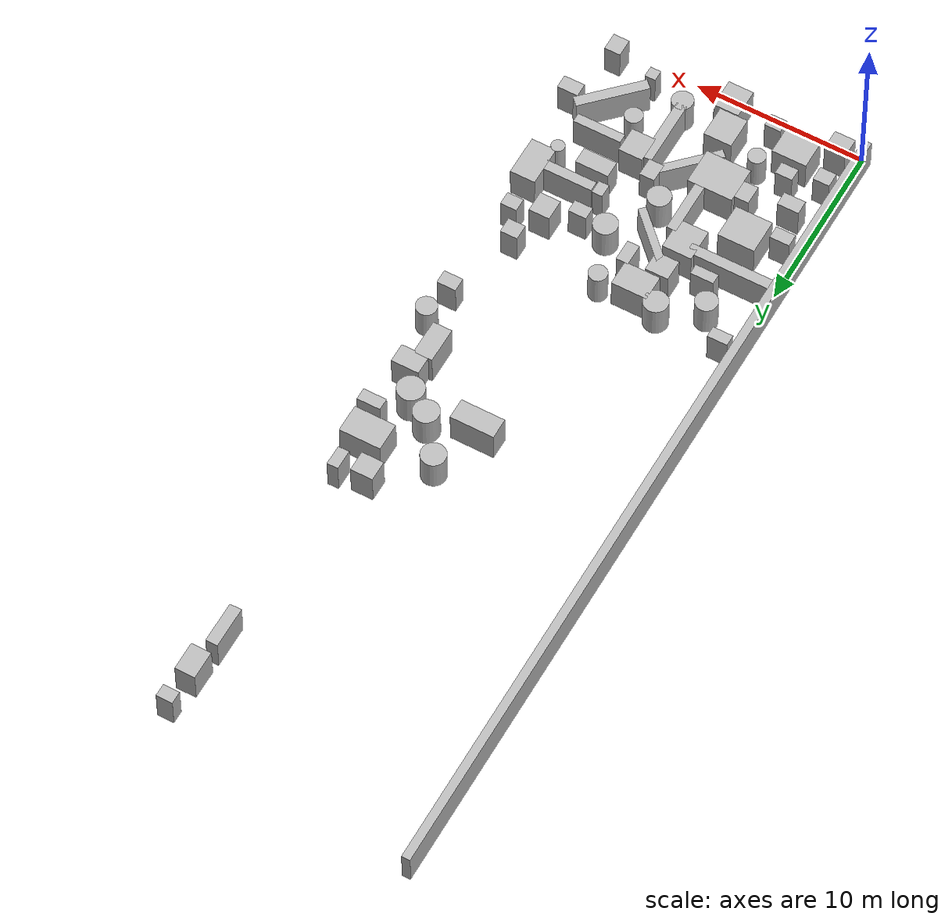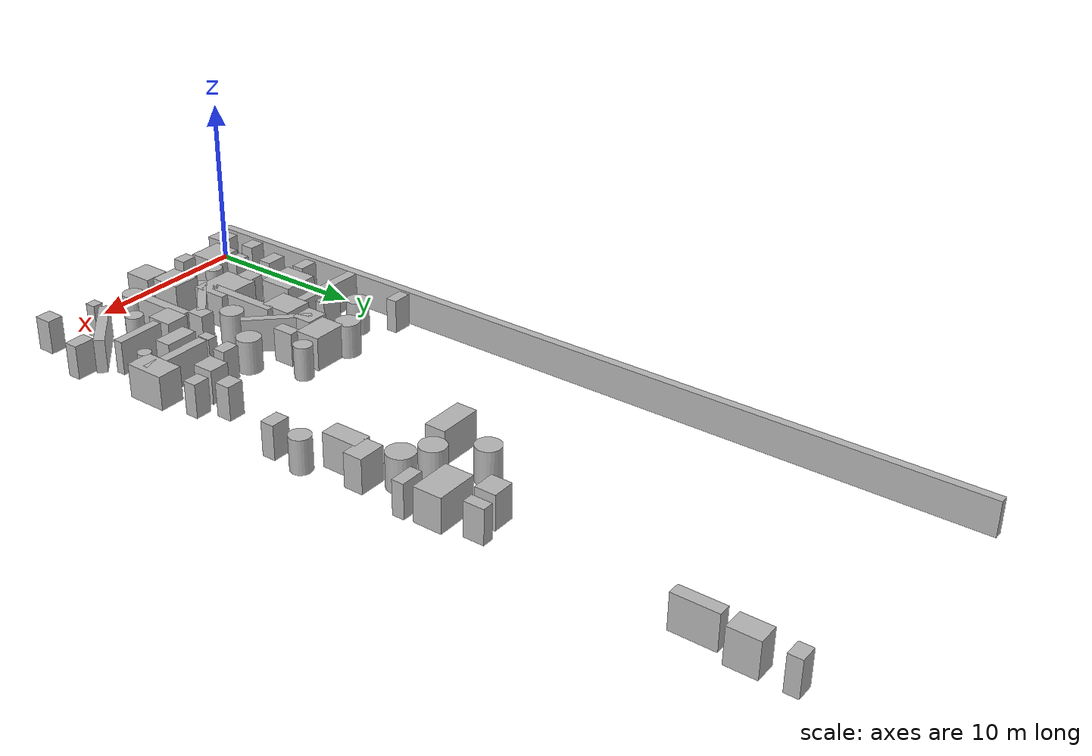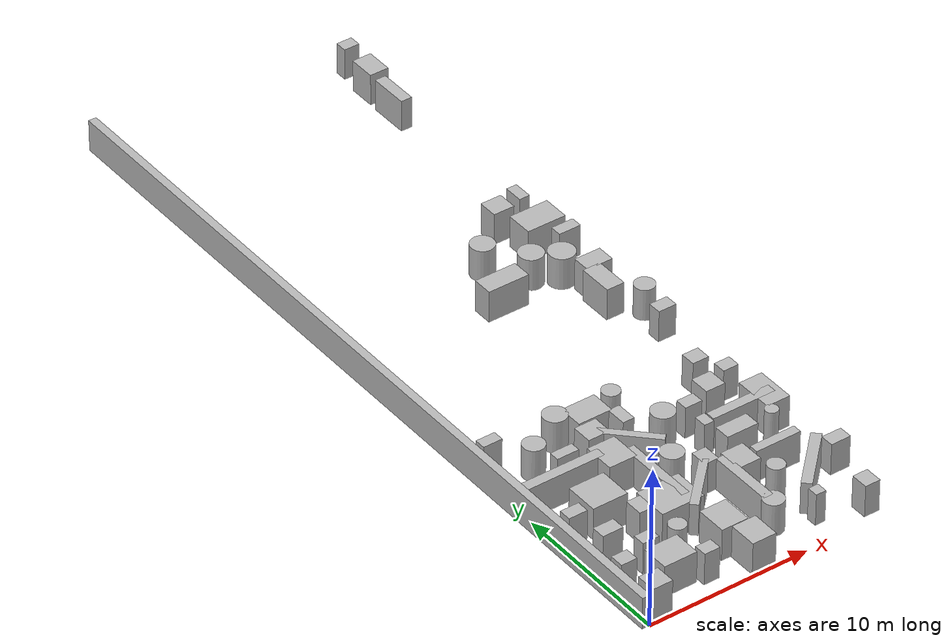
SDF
<sdf version="1.7">
 <world name="01_sparse">
  <include><uri>model://sun</uri></include>
  <model name="outer_wall_left">
   <static>true</static>
   <pose>-0.250000 25.000000 1.000000 0 0 0</pose>
   <link name="link">
    <collision name="collision">
     <geometry><box><size>0.500000 50.000000 2.000000</size></box></geometry>
    </collision>
    <visual name="visual"><geometry><box><size>0.500000 50.000000 2.000000</size></box></geometry></visual>
   </link>
  </model>
  <model name="obstacle_0000">
   <static>true</static>
   <pose>0.695004 3.118231 1.000000 0 0 0.000000</pose>
   <link name="link">
    <collision name="collision">
     <geometry><box><size>0.973815 0.859350 2.000000</size></box></geometry>
    </collision>
    <visual name="visual"><geometry><box><size>0.973815 0.859350 2.000000</size></box></geometry></visual>
   </link>
  </model>
  <model name="obstacle_0001">
   <static>true</static>
   <pose>0.967370 0.865894 1.000000 0 0 1.570796</pose>
   <link name="link">
    <collision name="collision">
     <geometry><box><size>1.232415 1.233601 2.000000</size></box></geometry>
    </collision>
    <visual name="visual"><geometry><box><size>1.232415 1.233601 2.000000</size></box></geometry></visual>
   </link>
  </model>
  <model name="obstacle_0002">
   <static>true</static>
   <pose>1.453639 5.475115 1.000000 0 0 1.570796</pose>
   <link name="link">
    <collision name="collision">
     <geometry><box><size>0.838642 1.276874 2.000000</size></box></geometry>
    </collision>
    <visual name="visual"><geometry><box><size>0.838642 1.276874 2.000000</size></box></geometry></visual>
   </link>
  </model>
  <model name="obstacle_0003">
   <static>true</static>
   <pose>9.568257 4.710781 1.000000 0 0 1.570796</pose>
   <link name="link">
    <collision name="collision">
     <geometry><box><size>3.980438 0.613456 2.000000</size></box></geometry>
    </collision>
    <visual name="visual"><geometry><box><size>3.980438 0.613456 2.000000</size></box></geometry></visual>
   </link>
  </model>
  <model name="obstacle_0005">
   <static>true</static>
   <pose>4.604910 1.313257 1.000000 0 0 1.570796</pose>
   <link name="link">
    <collision name="collision">
     <geometry><box><size>0.781066 0.968072 2.000000</size></box></geometry>
    </collision>
    <visual name="visual"><geometry><box><size>0.781066 0.968072 2.000000</size></box></geometry></visual>
   </link>
  </model>
  <model name="obstacle_0006">
   <static>true</static>
   <pose>10.434392 6.153786 1.000000 0 0 0.000000</pose>
   <link name="link">
    <collision name="collision">
     <geometry><box><size>1.417977 1.537242 2.000000</size></box></geometry>
    </collision>
    <visual name="visual"><geometry><box><size>1.417977 1.537242 2.000000</size></box></geometry></visual>
   </link>
  </model>
  <model name="obstacle_0007">
   <static>true</static>
   <pose>2.624320 3.797344 1.000000 0 0 1.570796</pose>
   <link name="link">
    <collision name="collision">
     <geometry><box><size>0.756318 1.016406 2.000000</size></box></geometry>
    </collision>
    <visual name="visual"><geometry><box><size>0.756318 1.016406 2.000000</size></box></geometry></visual>
   </link>
  </model>
  <model name="obstacle_0008">
   <static>true</static>
   <pose>2.915276 2.166675 1.000000 0 0 1.570796</pose>
   <link name="link">
    <collision name="collision">
     <geometry><box><size>1.693183 2.049549 2.000000</size></box></geometry>
    </collision>
    <visual name="visual"><geometry><box><size>1.693183 2.049549 2.000000</size></box></geometry></visual>
   </link>
  </model>
  <model name="obstacle_0009">
   <static>true</static>
   <pose>11.501794 4.571215 1.000000 0 0 0</pose>
   <link name="link">
    <collision name="collision">
     <geometry><cylinder><radius>0.522550</radius><length>2.000000</length></cylinder></geometry>
    </collision>
    <visual name="visual">
     <geometry><cylinder><radius>0.522550</radius><length>2.000000</length></cylinder></geometry>
    </visual>
   </link>
  </model>
  <model name="obstacle_0010">
   <static>true</static>
   <pose>7.431690 5.729944 1.000000 0 0 0.785398</pose>
   <link name="link">
    <collision name="collision">
     <geometry><box><size>3.777457 0.501467 2.000000</size></box></geometry>
    </collision>
    <visual name="visual"><geometry><box><size>3.777457 0.501467 2.000000</size></box></geometry></visual>
   </link>
  </model>
  <model name="obstacle_0012">
   <static>true</static>
   <pose>0.858085 7.583045 1.000000 0 0 0.000000</pose>
   <link name="link">
    <collision name="collision">
     <geometry><box><size>1.160673 0.759524 2.000000</size></box></geometry>
    </collision>
    <visual name="visual"><geometry><box><size>1.160673 0.759524 2.000000</size></box></geometry></visual>
   </link>
  </model>
  <model name="obstacle_0013">
   <static>true</static>
   <pose>6.826381 2.863446 1.000000 0 0 0.000000</pose>
   <link name="link">
    <collision name="collision">
     <geometry><box><size>1.664469 1.877489 2.000000</size></box></geometry>
    </collision>
    <visual name="visual"><geometry><box><size>1.664469 1.877489 2.000000</size></box></geometry></visual>
   </link>
  </model>
  <model name="obstacle_0016">
   <static>true</static>
   <pose>11.797795 8.230290 1.000000 0 0 0.000000</pose>
   <link name="link">
    <collision name="collision">
     <geometry><box><size>1.982779 1.002163 2.000000</size></box></geometry>
    </collision>
    <visual name="visual"><geometry><box><size>1.982779 1.002163 2.000000</size></box></geometry></visual>
   </link>
  </model>
  <model name="obstacle_0017">
   <static>true</static>
   <pose>4.490485 3.681467 1.000000 0 0 0</pose>
   <link name="link">
    <collision name="collision">
     <geometry><cylinder><radius>0.513272</radius><length>2.000000</length></cylinder></geometry>
    </collision>
    <visual name="visual">
     <geometry><cylinder><radius>0.513272</radius><length>2.000000</length></cylinder></geometry>
    </visual>
   </link>
  </model>
  <model name="obstacle_0018">
   <static>true</static>
   <pose>5.642066 5.786353 1.000000 0 0 0.000000</pose>
   <link name="link">
    <collision name="collision">
     <geometry><box><size>2.666586 2.187683 2.000000</size></box></geometry>
    </collision>
    <visual name="visual"><geometry><box><size>2.666586 2.187683 2.000000</size></box></geometry></visual>
   </link>
  </model>
  <model name="obstacle_0019">
   <static>true</static>
   <pose>8.968400 7.216317 1.000000 0 0 0.000000</pose>
   <link name="link">
    <collision name="collision">
     <geometry><box><size>0.886585 1.111045 2.000000</size></box></geometry>
    </collision>
    <visual name="visual"><geometry><box><size>0.886585 1.111045 2.000000</size></box></geometry></visual>
   </link>
  </model>
  <model name="obstacle_0020">
   <static>true</static>
   <pose>3.919306 6.030207 1.000000 0 0 0.000000</pose>
   <link name="link">
    <collision name="collision">
     <geometry><box><size>0.933257 1.141949 2.000000</size></box></geometry>
    </collision>
    <visual name="visual"><geometry><box><size>0.933257 1.141949 2.000000</size></box></geometry></visual>
   </link>
  </model>
  <model name="obstacle_0021">
   <static>true</static>
   <pose>6.242986 7.711129 1.000000 0 0 1.570796</pose>
   <link name="link">
    <collision name="collision">
     <geometry><box><size>4.687507 0.567327 2.000000</size></box></geometry>
    </collision>
    <visual name="visual"><geometry><box><size>4.687507 0.567327 2.000000</size></box></geometry></visual>
   </link>
  </model>
  <model name="obstacle_0022">
   <static>true</static>
   <pose>10.759781 9.615030 1.000000 0 0 0.000000</pose>
   <link name="link">
    <collision name="collision">
     <geometry><box><size>0.618906 0.808397 2.000000</size></box></geometry>
    </collision>
    <visual name="visual"><geometry><box><size>0.618906 0.808397 2.000000</size></box></geometry></visual>
   </link>
  </model>
  <model name="obstacle_0025">
   <static>true</static>
   <pose>2.827723 8.137635 1.000000 0 0 0.000000</pose>
   <link name="link">
    <collision name="collision">
     <geometry><box><size>2.189633 2.068551 2.000000</size></box></geometry>
    </collision>
    <visual name="visual"><geometry><box><size>2.189633 2.068551 2.000000</size></box></geometry></visual>
   </link>
  </model>
  <model name="obstacle_0026">
   <static>true</static>
   <pose>2.418969 10.610893 1.000000 0 0 0.000000</pose>
   <link name="link">
    <collision name="collision">
     <geometry><box><size>4.837938 0.625704 2.000000</size></box></geometry>
    </collision>
    <visual name="visual"><geometry><box><size>4.837938 0.625704 2.000000</size></box></geometry></visual>
   </link>
  </model>
  <model name="obstacle_0027">
   <static>true</static>
   <pose>9.682625 2.440319 1.000000 0 0 0</pose>
   <link name="link">
    <collision name="collision">
     <geometry><cylinder><radius>0.623030</radius><length>2.000000</length></cylinder></geometry>
    </collision>
    <visual name="visual">
     <geometry><cylinder><radius>0.623030</radius><length>2.000000</length></cylinder></geometry>
    </visual>
   </link>
  </model>
  <model name="obstacle_0028">
   <static>true</static>
   <pose>12.720975 6.202122 1.000000 0 0 0.000000</pose>
   <link name="link">
    <collision name="collision">
     <geometry><box><size>2.853137 0.559761 2.000000</size></box></geometry>
    </collision>
    <visual name="visual"><geometry><box><size>2.853137 0.559761 2.000000</size></box></geometry></visual>
   </link>
  </model>
  <model name="obstacle_0030">
   <static>true</static>
   <pose>7.335277 1.013936 1.000000 0 0 0.000000</pose>
   <link name="link">
    <collision name="collision">
     <geometry><box><size>1.494800 1.728177 2.000000</size></box></geometry>
    </collision>
    <visual name="visual"><geometry><box><size>1.494800 1.728177 2.000000</size></box></geometry></visual>
   </link>
  </model>
  <model name="obstacle_0031">
   <static>true</static>
   <pose>6.843772 11.026727 1.000000 0 0 2.356194</pose>
   <link name="link">
    <collision name="collision">
     <geometry><box><size>3.959374 0.462468 2.000000</size></box></geometry>
    </collision>
    <visual name="visual"><geometry><box><size>3.959374 0.462468 2.000000</size></box></geometry></visual>
   </link>
  </model>
  <model name="obstacle_0032">
   <static>true</static>
   <pose>7.804776 8.504881 1.000000 0 0 0</pose>
   <link name="link">
    <collision name="collision">
     <geometry><cylinder><radius>0.684296</radius><length>2.000000</length></cylinder></geometry>
    </collision>
    <visual name="visual">
     <geometry><cylinder><radius>0.684296</radius><length>2.000000</length></cylinder></geometry>
    </visual>
   </link>
  </model>
  <model name="obstacle_0033">
   <static>true</static>
   <pose>11.902514 1.683297 1.000000 0 0 0.000000</pose>
   <link name="link">
    <collision name="collision">
     <geometry><box><size>0.626175 0.658737 2.000000</size></box></geometry>
    </collision>
    <visual name="visual"><geometry><box><size>0.626175 0.658737 2.000000</size></box></geometry></visual>
   </link>
  </model>
  <model name="obstacle_0038">
   <static>true</static>
   <pose>13.242705 3.863169 1.000000 0 0 0.785398</pose>
   <link name="link">
    <collision name="collision">
     <geometry><box><size>4.156962 0.610762 2.000000</size></box></geometry>
    </collision>
    <visual name="visual"><geometry><box><size>4.156962 0.610762 2.000000</size></box></geometry></visual>
   </link>
  </model>
  <model name="obstacle_0039">
   <static>true</static>
   <pose>13.154783 9.663601 1.000000 0 0 0.000000</pose>
   <link name="link">
    <collision name="collision">
     <geometry><box><size>4.020465 0.601088 2.000000</size></box></geometry>
    </collision>
    <visual name="visual"><geometry><box><size>4.020465 0.601088 2.000000</size></box></geometry></visual>
   </link>
  </model>
  <model name="obstacle_0043">
   <static>true</static>
   <pose>15.367563 4.522179 1.000000 0 0 1.570796</pose>
   <link name="link">
    <collision name="collision">
     <geometry><box><size>0.813759 1.240119 2.000000</size></box></geometry>
    </collision>
    <visual name="visual"><geometry><box><size>0.813759 1.240119 2.000000</size></box></geometry></visual>
   </link>
  </model>
  <model name="obstacle_0044">
   <static>true</static>
   <pose>11.053657 11.301368 1.000000 0 0 0.000000</pose>
   <link name="link">
    <collision name="collision">
     <geometry><box><size>1.068712 0.767121 2.000000</size></box></geometry>
    </collision>
    <visual name="visual"><geometry><box><size>1.068712 0.767121 2.000000</size></box></geometry></visual>
   </link>
  </model>
  <model name="obstacle_0045">
   <static>true</static>
   <pose>11.964090 26.340969 1.000000 0 0 0</pose>
   <link name="link">
    <collision name="collision">
     <geometry><cylinder><radius>0.744905</radius><length>2.000000</length></cylinder></geometry>
    </collision>
    <visual name="visual">
     <geometry><cylinder><radius>0.744905</radius><length>2.000000</length></cylinder></geometry>
    </visual>
   </link>
  </model>
  <model name="obstacle_0046">
   <static>true</static>
   <pose>14.137918 28.708960 1.000000 0 0 0.000000</pose>
   <link name="link">
    <collision name="collision">
     <geometry><box><size>2.461549 1.665139 2.000000</size></box></geometry>
    </collision>
    <visual name="visual"><geometry><box><size>2.461549 1.665139 2.000000</size></box></geometry></visual>
   </link>
  </model>
  <model name="obstacle_0047">
   <static>true</static>
   <pose>5.280621 10.257216 1.000000 0 0 0.000000</pose>
   <link name="link">
    <collision name="collision">
     <geometry><box><size>1.736876 1.937639 2.000000</size></box></geometry>
    </collision>
    <visual name="visual"><geometry><box><size>1.736876 1.937639 2.000000</size></box></geometry></visual>
   </link>
  </model>
  <model name="obstacle_0048">
   <static>true</static>
   <pose>3.338259 11.716652 1.000000 0 0 0.000000</pose>
   <link name="link">
    <collision name="collision">
     <geometry><box><size>1.372295 0.621325 2.000000</size></box></geometry>
    </collision>
    <visual name="visual"><geometry><box><size>1.372295 0.621325 2.000000</size></box></geometry></visual>
   </link>
  </model>
  <model name="obstacle_0049">
   <static>true</static>
   <pose>15.058719 47.589104 1.000000 0 0 0.000000</pose>
   <link name="link">
    <collision name="collision">
     <geometry><box><size>0.972650 0.745498 2.000000</size></box></geometry>
    </collision>
    <visual name="visual"><geometry><box><size>0.972650 0.745498 2.000000</size></box></geometry></visual>
   </link>
  </model>
  <model name="obstacle_0050">
   <static>true</static>
   <pose>5.557577 12.327217 1.000000 0 0 0.000000</pose>
   <link name="link">
    <collision name="collision">
     <geometry><box><size>1.366274 1.255419 2.000000</size></box></geometry>
    </collision>
    <visual name="visual"><geometry><box><size>1.366274 1.255419 2.000000</size></box></geometry></visual>
   </link>
  </model>
  <model name="obstacle_0051">
   <static>true</static>
   <pose>7.540595 12.484419 1.000000 0 0 1.570796</pose>
   <link name="link">
    <collision name="collision">
     <geometry><box><size>1.282651 0.717477 2.000000</size></box></geometry>
    </collision>
    <visual name="visual"><geometry><box><size>1.282651 0.717477 2.000000</size></box></geometry></visual>
   </link>
  </model>
  <model name="obstacle_0052">
   <static>true</static>
   <pose>9.455897 11.452715 1.000000 0 0 0</pose>
   <link name="link">
    <collision name="collision">
     <geometry><cylinder><radius>0.708917</radius><length>2.000000</length></cylinder></geometry>
    </collision>
    <visual name="visual">
     <geometry><cylinder><radius>0.708917</radius><length>2.000000</length></cylinder></geometry>
    </visual>
   </link>
  </model>
  <model name="obstacle_0054">
   <static>true</static>
   <pose>14.561469 31.051536 1.000000 0 0 1.570796</pose>
   <link name="link">
    <collision name="collision">
     <geometry><box><size>1.191409 0.655741 2.000000</size></box></geometry>
    </collision>
    <visual name="visual"><geometry><box><size>1.191409 0.655741 2.000000</size></box></geometry></visual>
   </link>
  </model>
  <model name="obstacle_0060">
   <static>true</static>
   <pose>14.095047 8.278848 1.000000 0 0 0</pose>
   <link name="link">
    <collision name="collision">
     <geometry><cylinder><radius>0.389186</radius><length>2.000000</length></cylinder></geometry>
    </collision>
    <visual name="visual">
     <geometry><cylinder><radius>0.389186</radius><length>2.000000</length></cylinder></geometry>
    </visual>
   </link>
  </model>
  <model name="obstacle_0061">
   <static>true</static>
   <pose>12.985390 30.765149 1.000000 0 0 0.000000</pose>
   <link name="link">
    <collision name="collision">
     <geometry><box><size>1.316308 1.215602 2.000000</size></box></geometry>
    </collision>
    <visual name="visual"><geometry><box><size>1.316308 1.215602 2.000000</size></box></geometry></visual>
   </link>
  </model>
  <model name="obstacle_0068">
   <static>true</static>
   <pose>14.515086 0.946214 1.000000 0 0 1.570796</pose>
   <link name="link">
    <collision name="collision">
     <geometry><box><size>1.055578 0.941291 2.000000</size></box></geometry>
    </collision>
    <visual name="visual"><geometry><box><size>1.055578 0.941291 2.000000</size></box></geometry></visual>
   </link>
  </model>
  <model name="obstacle_0070">
   <static>true</static>
   <pose>12.834849 12.009384 1.000000 0 0 0.000000</pose>
   <link name="link">
    <collision name="collision">
     <geometry><box><size>1.221479 1.262328 2.000000</size></box></geometry>
    </collision>
    <visual name="visual"><geometry><box><size>1.221479 1.262328 2.000000</size></box></geometry></visual>
   </link>
  </model>
  <model name="obstacle_0073">
   <static>true</static>
   <pose>14.819699 27.071995 1.000000 0 0 0.000000</pose>
   <link name="link">
    <collision name="collision">
     <geometry><box><size>1.393594 0.713560 2.000000</size></box></geometry>
    </collision>
    <visual name="visual"><geometry><box><size>1.393594 0.713560 2.000000</size></box></geometry></visual>
   </link>
  </model>
  <model name="obstacle_0076">
   <static>true</static>
   <pose>6.324869 13.836407 1.000000 0 0 0.000000</pose>
   <link name="link">
    <collision name="collision">
     <geometry><box><size>2.108112 1.527688 2.000000</size></box></geometry>
    </collision>
    <visual name="visual"><geometry><box><size>2.108112 1.527688 2.000000</size></box></geometry></visual>
   </link>
  </model>
  <model name="obstacle_0082">
   <static>true</static>
   <pose>14.301550 23.922290 1.000000 0 0 0.000000</pose>
   <link name="link">
    <collision name="collision">
     <geometry><box><size>1.639022 1.139326 2.000000</size></box></geometry>
    </collision>
    <visual name="visual"><geometry><box><size>1.639022 1.139326 2.000000</size></box></geometry></visual>
   </link>
  </model>
  <model name="obstacle_0083">
   <static>true</static>
   <pose>13.366155 25.486562 1.000000 0 0 0</pose>
   <link name="link">
    <collision name="collision">
     <geometry><cylinder><radius>0.789834</radius><length>2.000000</length></cylinder></geometry>
    </collision>
    <visual name="visual">
     <geometry><cylinder><radius>0.789834</radius><length>2.000000</length></cylinder></geometry>
    </visual>
   </link>
  </model>
  <model name="obstacle_0084">
   <static>true</static>
   <pose>15.190862 20.608603 1.000000 0 0 0</pose>
   <link name="link">
    <collision name="collision">
     <geometry><cylinder><radius>0.611046</radius><length>2.000000</length></cylinder></geometry>
    </collision>
    <visual name="visual">
     <geometry><cylinder><radius>0.611046</radius><length>2.000000</length></cylinder></geometry>
    </visual>
   </link>
  </model>
  <model name="obstacle_0092">
   <static>true</static>
   <pose>9.401305 25.437467 1.000000 0 0 0.000000</pose>
   <link name="link">
    <collision name="collision">
     <geometry><box><size>2.600221 1.231804 2.000000</size></box></geometry>
    </collision>
    <visual name="visual"><geometry><box><size>2.600221 1.231804 2.000000</size></box></geometry></visual>
   </link>
  </model>
  <model name="obstacle_0093">
   <static>true</static>
   <pose>13.811025 22.385495 1.000000 0 0 1.570796</pose>
   <link name="link">
    <collision name="collision">
     <geometry><box><size>2.136090 1.117018 2.000000</size></box></geometry>
    </collision>
    <visual name="visual"><geometry><box><size>2.136090 1.117018 2.000000</size></box></geometry></visual>
   </link>
  </model>
  <model name="obstacle_0095">
   <static>true</static>
   <pose>10.325522 28.468378 1.000000 0 0 0</pose>
   <link name="link">
    <collision name="collision">
     <geometry><cylinder><radius>0.723827</radius><length>2.000000</length></cylinder></geometry>
    </collision>
    <visual name="visual">
     <geometry><cylinder><radius>0.723827</radius><length>2.000000</length></cylinder></geometry>
    </visual>
   </link>
  </model>
  <model name="obstacle_0098">
   <static>true</static>
   <pose>14.776644 9.770125 1.000000 0 0 1.570796</pose>
   <link name="link">
    <collision name="collision">
     <geometry><box><size>2.396115 1.482022 2.000000</size></box></geometry>
    </collision>
    <visual name="visual"><geometry><box><size>2.396115 1.482022 2.000000</size></box></geometry></visual>
   </link>
  </model>
  <model name="obstacle_0102">
   <static>true</static>
   <pose>14.935089 45.269719 1.000000 0 0 1.570796</pose>
   <link name="link">
    <collision name="collision">
     <geometry><box><size>1.682003 1.192944 2.000000</size></box></geometry>
    </collision>
    <visual name="visual"><geometry><box><size>1.682003 1.192944 2.000000</size></box></geometry></visual>
   </link>
  </model>
  <model name="obstacle_0103">
   <static>true</static>
   <pose>4.761551 14.482887 1.000000 0 0 0</pose>
   <link name="link">
    <collision name="collision">
     <geometry><cylinder><radius>0.714098</radius><length>2.000000</length></cylinder></geometry>
    </collision>
    <visual name="visual">
     <geometry><cylinder><radius>0.714098</radius><length>2.000000</length></cylinder></geometry>
    </visual>
   </link>
  </model>
  <model name="obstacle_0105">
   <static>true</static>
   <pose>14.487238 12.622085 1.000000 0 0 0.000000</pose>
   <link name="link">
    <collision name="collision">
     <geometry><box><size>0.974160 0.800514 2.000000</size></box></geometry>
    </collision>
    <visual name="visual"><geometry><box><size>0.974160 0.800514 2.000000</size></box></geometry></visual>
   </link>
  </model>
  <model name="obstacle_0107">
   <static>true</static>
   <pose>8.298344 14.391092 1.000000 0 0 0</pose>
   <link name="link">
    <collision name="collision">
     <geometry><cylinder><radius>0.540348</radius><length>2.000000</length></cylinder></geometry>
    </collision>
    <visual name="visual">
     <geometry><cylinder><radius>0.540348</radius><length>2.000000</length></cylinder></geometry>
    </visual>
   </link>
  </model>
  <model name="obstacle_0108">
   <static>true</static>
   <pose>14.638909 42.678746 1.000000 0 0 1.570796</pose>
   <link name="link">
    <collision name="collision">
     <geometry><box><size>2.462319 0.697867 2.000000</size></box></geometry>
    </collision>
    <visual name="visual"><geometry><box><size>2.462319 0.697867 2.000000</size></box></geometry></visual>
   </link>
  </model>
  <model name="obstacle_0109">
   <static>true</static>
   <pose>0.771679 14.757624 1.000000 0 0 1.570796</pose>
   <link name="link">
    <collision name="collision">
     <geometry><box><size>0.674803 1.184599 2.000000</size></box></geometry>
    </collision>
    <visual name="visual"><geometry><box><size>0.674803 1.184599 2.000000</size></box></geometry></visual>
   </link>
  </model>
  <model name="obstacle_0112">
   <static>true</static>
   <pose>13.601323 14.116257 1.000000 0 0 0.000000</pose>
   <link name="link">
    <collision name="collision">
     <geometry><box><size>1.020376 0.931524 2.000000</size></box></geometry>
    </collision>
    <visual name="visual"><geometry><box><size>1.020376 0.931524 2.000000</size></box></geometry></visual>
   </link>
  </model>
  <model name="obstacle_0115">
   <static>true</static>
   <pose>2.438560 13.166374 1.000000 0 0 0</pose>
   <link name="link">
    <collision name="collision">
     <geometry><cylinder><radius>0.649425</radius><length>2.000000</length></cylinder></geometry>
    </collision>
    <visual name="visual">
     <geometry><cylinder><radius>0.649425</radius><length>2.000000</length></cylinder></geometry>
    </visual>
   </link>
  </model>
  <model name="obstacle_0119">
   <static>true</static>
   <pose>14.892420 18.623176 1.000000 0 0 0.000000</pose>
   <link name="link">
    <collision name="collision">
     <geometry><box><size>1.130146 0.821535 2.000000</size></box></geometry>
    </collision>
    <visual name="visual"><geometry><box><size>1.130146 0.821535 2.000000</size></box></geometry></visual>
   </link>
  </model>
 </world>
</sdf>
